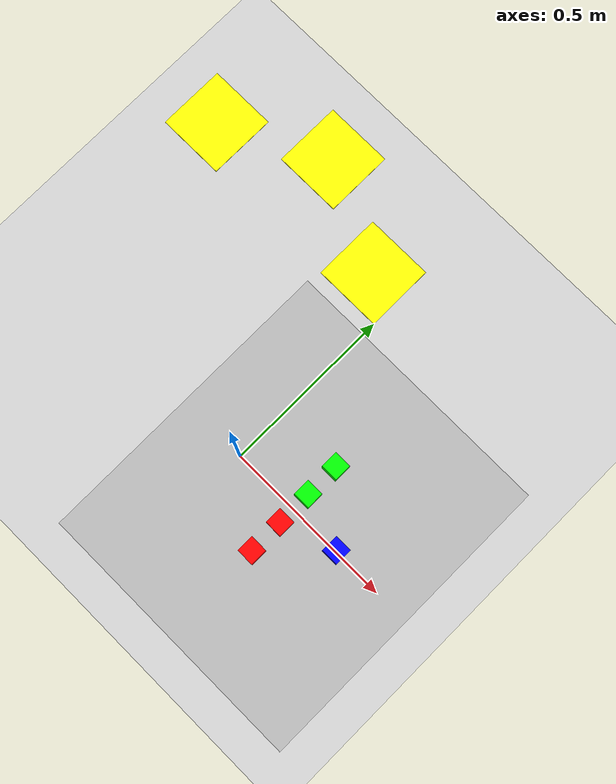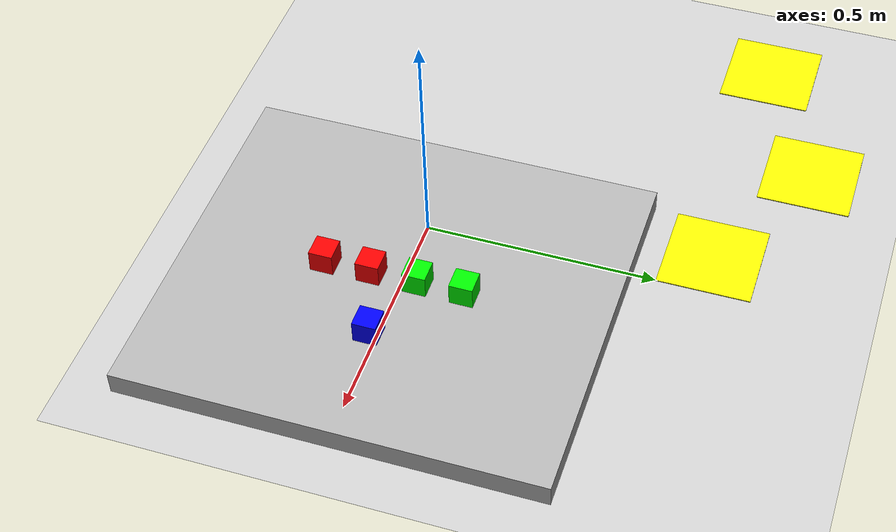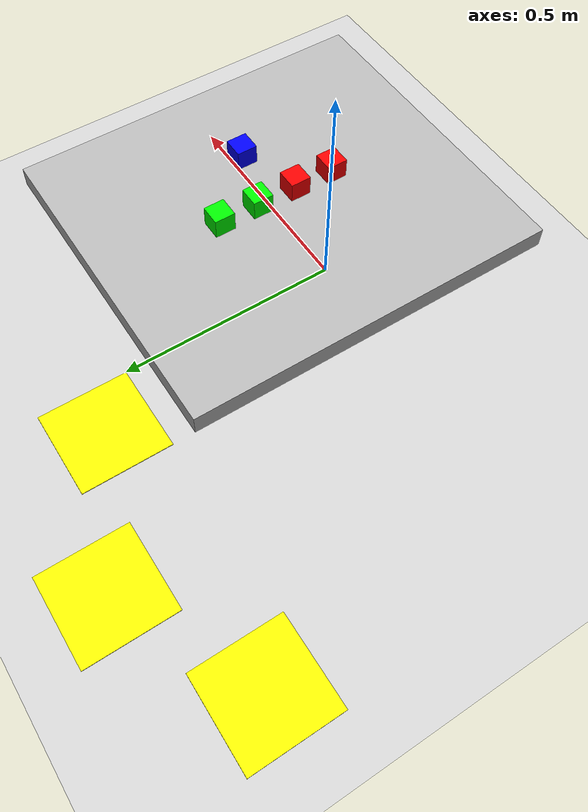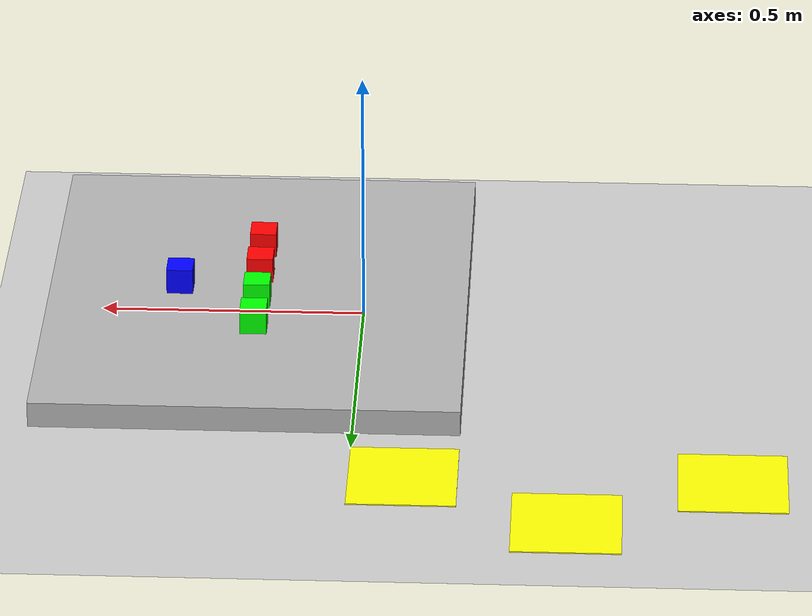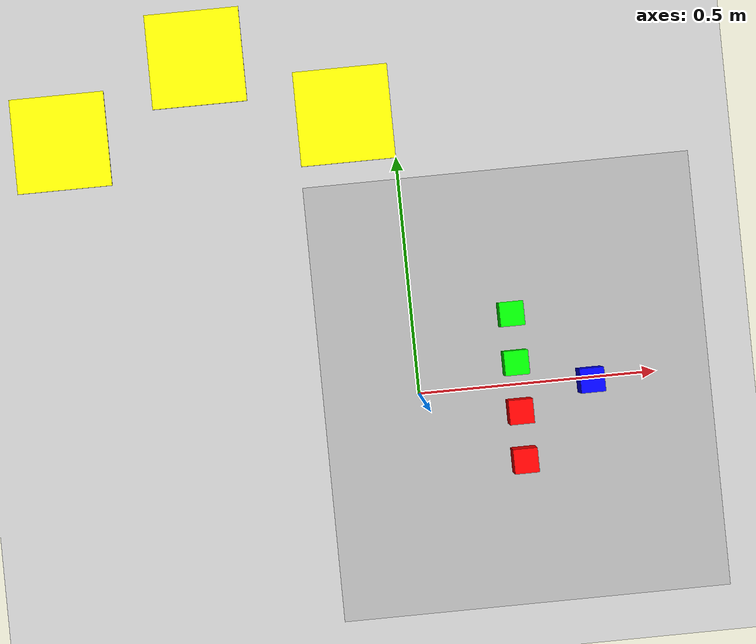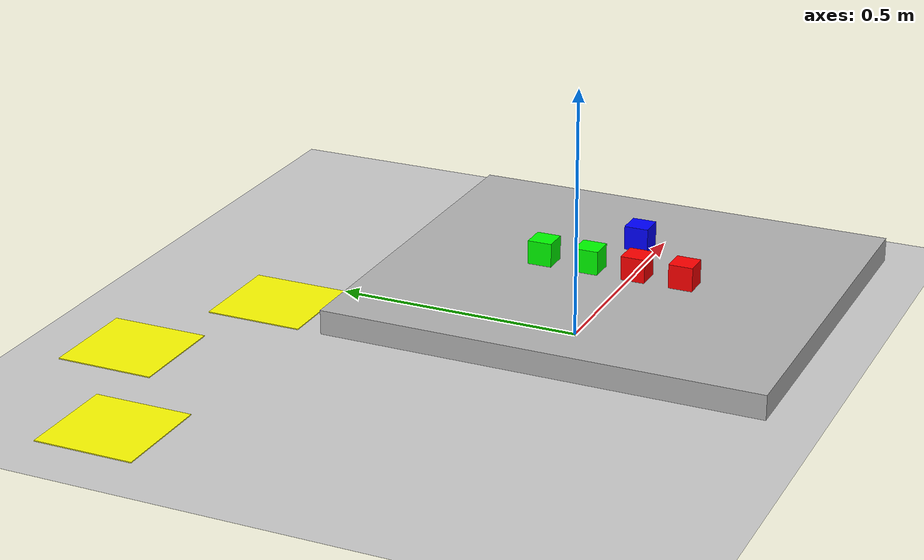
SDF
<?xml version="1.0" ?>
<sdf version="1.9">
  <world name="ur5_workspace">

    <!-- 物理引擎 -->
    <physics name="1ms" type="ode">
      <max_step_size>0.001</max_step_size>
      <real_time_factor>1.0</real_time_factor>
      <real_time_update_rate>1000</real_time_update_rate>
    </physics>

    <!-- 场景设置 -->
    <scene>
      <ambient>0.4 0.4 0.4 1.0</ambient>
      <background>0.7 0.7 0.7 1.0</background>
      <shadows>true</shadows>
    </scene>

    <!-- 太阳光 -->
    <light type="directional" name="sun">
      <cast_shadows>true</cast_shadows>
      <pose>0 0 10 0 0 0</pose>
      <diffuse>0.8 0.8 0.8 1</diffuse>
      <specular>0.2 0.2 0.2 1</specular>
      <attenuation>
        <range>1000</range>
        <constant>0.9</constant>
        <linear>0.01</linear>
        <quadratic>0.001</quadratic>
      </attenuation>
      <direction>-0.5 0.1 -0.9</direction>
    </light>

    <!-- 地面 -->
    <model name="ground_plane">
      <static>true</static>
      <link name="link">
        <collision name="collision">
          <geometry>
            <plane>
              <normal>0 0 1</normal>
              <size>100 100</size>
            </plane>
          </geometry>
        </collision>
        <visual name="visual">
          <geometry>
            <plane>
              <normal>0 0 1</normal>
              <size>100 100</size>
            </plane>
          </geometry>
          <material>
            <ambient>0.8 0.8 0.8 1</ambient>
            <diffuse>0.8 0.8 0.8 1</diffuse>
            <specular>0.8 0.8 0.8 1</specular>
          </material>
        </visual>
      </link>
    </model>

    <!-- 工作台 - 放在机械臂前方，地面上 -->
    <include>
      <uri>model://workspace_table</uri>
      <name>workspace_table</name>
      <pose>0.2 0 0.025 0 0 0</pose>
    </include>

    <!-- 红色方块 -->
    <include>
      <uri>model://red_block</uri>
      <name>red_block_1</name>
      <pose>0.2 -0.15 0.075 0 0 0</pose>
    </include>

    <include>
      <uri>model://red_block</uri>
      <name>red_block_2</name>
      <pose>0.2 -0.05 0.075 0 0 0</pose>
    </include>

    <!-- 绿色方块 -->
    <include>
      <uri>model://green_block</uri>
      <name>green_block_1</name>
      <pose>0.2 0.05 0.075 0 0 0</pose>
    </include>

    <include>
      <uri>model://green_block</uri>
      <name>green_block_2</name>
      <pose>0.2 0.15 0.075 0 0 0</pose>
    </include>

    <!-- 蓝色方块 -->
    <include>
      <uri>model://blue_block</uri>
      <name>blue_block_1</name>
      <pose>0.35 0.0 0.075 0 0 0</pose>
    </include>

    <!-- 码垛区域标记 -->
    <include>
      <uri>model://pallet_zone</uri>
      <name>pallet_zone1</name>
      <pose>-0.4 0.75 0.0 0 0 0</pose>
    </include>

    <!-- 码垛区域标记 -->
    <include>
      <uri>model://pallet_zone</uri>
      <name>pallet_zone2</name>
      <pose>-0.1 0.6 0.0 0 0 0</pose>
    </include>

    <!-- 码垛区域标记 -->
    <include>
      <uri>model://pallet_zone</uri>
      <name>pallet_zone3</name>
      <pose>-0.7 0.6 0.0 0 0 0</pose>
    </include>

  </world>
</sdf>

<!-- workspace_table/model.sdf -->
<sdf version="1.9">
  <model name="workspace_table">
    <static>true</static>
    <link name="table_link">
      <pose>0 0 0 0 0 0</pose>

      <collision name="collision">
        <geometry>
          <box>
            <size>0.8 0.9 0.05</size>
          </box>
        </geometry>
      </collision>

      <visual name="visual">
        <geometry>
          <box>
            <size>0.8 0.9 0.05</size>
          </box>
        </geometry>
        <material>
          <ambient>0.7 0.7 0.7 1</ambient>
          <diffuse>0.7 0.7 0.7 1</diffuse>
          <specular>0.2 0.2 0.2 1</specular>
        </material>
      </visual>
    </link>
  </model>
</sdf>

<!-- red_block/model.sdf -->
<sdf version="1.9">
  <model name="red_block">
    <link name="link">
      <pose>0 0 0 0 0 0</pose>

      <inertial>
        <mass>0.05</mass>
        <inertia>
          <ixx>0.000021</ixx>
          <ixy>0</ixy>
          <ixz>0</ixz>
          <iyy>0.000021</iyy>
          <iyz>0</iyz>
          <izz>0.000021</izz>
        </inertia>
      </inertial>

      <collision name="collision">
        <geometry>
          <box>
            <size>0.05 0.05 0.05</size>
          </box>
        </geometry>
        <surface>
          <friction>
            <ode>
              <mu>0.8</mu>
              <mu2>0.8</mu2>
            </ode>
          </friction>
        </surface>
      </collision>

      <visual name="visual">
        <geometry>
          <box>
            <size>0.05 0.05 0.05</size>
          </box>
        </geometry>
        <material>
          <ambient>1 0 0 1</ambient>
          <diffuse>1 0 0 1</diffuse>
          <specular>0.3 0.3 0.3 1</specular>
        </material>
      </visual>
    </link>
  </model>
</sdf>

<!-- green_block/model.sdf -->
<sdf version="1.9">
  <model name="green_block">
    <link name="link">
      <pose>0 0 0 0 0 0</pose>

      <inertial>
        <mass>0.05</mass>
        <inertia>
          <ixx>0.000021</ixx>
          <ixy>0</ixy>
          <ixz>0</ixz>
          <iyy>0.000021</iyy>
          <iyz>0</iyz>
          <izz>0.000021</izz>
        </inertia>
      </inertial>

      <collision name="collision">
        <geometry>
          <box>
            <size>0.05 0.05 0.05</size>
          </box>
        </geometry>
        <surface>
          <friction>
            <ode>
              <mu>0.8</mu>
              <mu2>0.8</mu2>
            </ode>
          </friction>
        </surface>
      </collision>

      <visual name="visual">
        <geometry>
          <box>
            <size>0.05 0.05 0.05</size>
          </box>
        </geometry>
        <material>
          <ambient>0 1 0 1</ambient>
          <diffuse>0 1 0 1</diffuse>
          <specular>0.3 0.3 0.3 1</specular>
        </material>
      </visual>
    </link>
  </model>
</sdf>

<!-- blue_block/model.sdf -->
<sdf version="1.9">
  <model name="blue_block">
    <link name="link">
      <pose>0 0 0 0 0 0</pose>

      <inertial>
        <mass>0.05</mass>
        <inertia>
          <ixx>0.000021</ixx>
          <ixy>0</ixy>
          <ixz>0</ixz>
          <iyy>0.000021</iyy>
          <iyz>0</iyz>
          <izz>0.000021</izz>
        </inertia>
      </inertial>

      <collision name="collision">
        <geometry>
          <box>
            <size>0.05 0.05 0.05</size>
          </box>
        </geometry>
        <surface>
          <friction>
            <ode>
              <mu>0.8</mu>
              <mu2>0.8</mu2>
            </ode>
          </friction>
        </surface>
      </collision>

      <visual name="visual">
        <geometry>
          <box>
            <size>0.05 0.05 0.05</size>
          </box>
        </geometry>
        <material>
          <ambient>0 0 1 1</ambient>
          <diffuse>0 0 1 1</diffuse>
          <specular>0.3 0.3 0.3 1</specular>
        </material>
      </visual>
    </link>
  </model>
</sdf>

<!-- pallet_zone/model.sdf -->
<sdf version="1.9">
  <model name="pallet_zone">
    <static>true</static>
    <link name="link">
      <pose>0 0 0 0 0 0</pose>

      <collision name="collision">
        <geometry>
          <box>
            <size>0.2 0.2 0.002</size>
          </box>
        </geometry>
      </collision>

      <visual name="visual">
        <geometry>
          <box>
            <size>0.2 0.2 0.002</size>
          </box>
        </geometry>
        <material>
          <ambient>1 1 0 1</ambient>
          <diffuse>1 1 0 1</diffuse>
          <specular>0.5 0.5 0.5 1</specular>
        </material>
      </visual>
    </link>
  </model>
</sdf>
